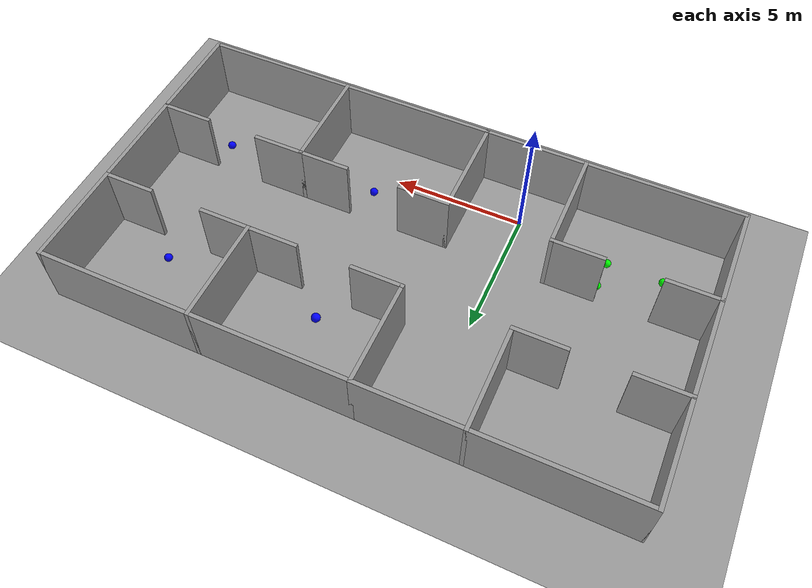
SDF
<sdf version="1.6">
 <world name="default">
  <light name="sun" type="directional">
   <pose>0 0 10 0 -0 0</pose>
   <diffuse>0.8 0.8 0.8 1</diffuse>
   <specular>0.2 0.2 0.2 1</specular>
   <attenuation>
    <range>1000</range>
    <constant>0.9</constant>
    <linear>0.01</linear>
    <quadratic>0.001</quadratic>
   </attenuation>
   <direction>0.5 0.1 -0.9</direction>
  </light>
  <scene><ambient>0.4 0.4 0.4 1</ambient><background>0.7 0.7 0.7 1</background><shadows>1</shadows></scene>
  <physics name="default_physics" default="0" type="ode">
   <max_step_size>0.01</max_step_size>
   <real_time_factor>1</real_time_factor>
   <real_time_update_rate>100</real_time_update_rate>
  </physics>
  <model name="ground_plane_0">
   <static>1</static>
   <link name="link">
    <collision name="collision">
     <geometry><plane><normal>0 0 1</normal><size>100 100</size></plane></geometry>
     <surface><friction><ode><mu>100</mu><mu2>50</mu2></ode></friction></surface>
    </collision>
    <visual name="visual">
     <cast_shadows>0</cast_shadows>
     <geometry><plane><normal>0 0 1</normal><size>100 100</size></plane></geometry>
     <material>
      <script><uri>file://media/materials/scripts/gazebo.material</uri><name>Gazebo/Grey</name></script>
     </material>
    </visual>
    <velocity_decay><linear>0</linear><angular>0</angular></velocity_decay>
   </link>
  </model>
  <gravity>0 0 -9.8</gravity>
  <magnetic_field>6e-06 2.3e-05 -4.2e-05</magnetic_field>
  <atmosphere type="adiabatic"/>
  <spherical_coordinates>
   <surface_model>EARTH_WGS84</surface_model>
   <latitude_deg>0</latitude_deg>
   <longitude_deg>0</longitude_deg>
   <elevation>0</elevation>
   <heading_deg>0</heading_deg>
  </spherical_coordinates>
  <model name="Hospital">
   <pose>3.16481 4.07122 0 0 -0 0</pose>
   <link name="Wall_1">
    <collision name="Wall_1_Collision">
     <geometry><box><size>4 0.15 2.5</size></box></geometry>
     <pose>0 0 1.25 0 -0 0</pose>
    </collision>
    <visual name="Wall_1_Visual">
     <pose>0 0 1.25 0 -0 0</pose>
     <geometry><box><size>4 0.15 2.5</size></box></geometry>
     <material>
      <script><uri>file://media/materials/scripts/gazebo.material</uri><name>Gazebo/Grey</name></script>
      <ambient>1 1 1 1</ambient>
     </material>
    </visual>
    <pose>-10.7 -3.85 0 0 0 -1.5708</pose>
   </link>
   <link name="Wall_10">
    <collision name="Wall_10_Collision">
     <geometry><box><size>2 0.15 2.5</size></box></geometry>
     <pose>0 0 1.25 0 -0 0</pose>
    </collision>
    <visual name="Wall_10_Visual">
     <pose>0 0 1.25 0 -0 0</pose>
     <geometry><box><size>2 0.15 2.5</size></box></geometry>
     <material>
      <script><uri>file://media/materials/scripts/gazebo.material</uri><name>Gazebo/Grey</name></script>
      <ambient>1 1 1 1</ambient>
     </material>
    </visual>
    <pose>-0.075 -1.925 0 0 -0 0</pose>
   </link>
   <link name="Wall_12">
    <collision name="Wall_12_Collision">
     <geometry><box><size>6 0.15 2.5</size></box></geometry>
     <pose>0 0 1.25 0 -0 0</pose>
    </collision>
    <visual name="Wall_12_Visual">
     <pose>0 0 1.25 0 -0 0</pose>
     <geometry><box><size>6 0.15 2.5</size></box></geometry>
     <material>
      <script><uri>file://media/materials/scripts/gazebo.material</uri><name>Gazebo/Grey</name></script>
      <ambient>1 1 1 1</ambient>
     </material>
    </visual>
    <pose>1.925 -5.775 0 0 -0 0</pose>
   </link>
   <link name="Wall_13">
    <collision name="Wall_13_Collision">
     <geometry><box><size>4 0.15 2.5</size></box></geometry>
     <pose>0 0 1.25 0 -0 0</pose>
    </collision>
    <visual name="Wall_13_Visual">
     <pose>0 0 1.25 0 -0 0</pose>
     <geometry><box><size>4 0.15 2.5</size></box></geometry>
     <material>
      <script><uri>file://media/materials/scripts/gazebo.material</uri><name>Gazebo/Grey</name></script>
      <ambient>1 1 1 1</ambient>
     </material>
    </visual>
    <pose>4.85 -3.85 0 0 -0 1.5708</pose>
   </link>
   <link name="Wall_14">
    <collision name="Wall_14_Collision">
     <geometry><box><size>2 0.15 2.5</size></box></geometry>
     <pose>0 0 1.25 0 -0 0</pose>
    </collision>
    <visual name="Wall_14_Visual">
     <pose>0 0 1.25 0 -0 0</pose>
     <geometry><box><size>2 0.15 2.5</size></box></geometry>
     <material>
      <script><uri>file://media/materials/scripts/gazebo.material</uri><name>Gazebo/Grey</name></script>
      <ambient>1 1 1 1</ambient>
     </material>
    </visual>
    <pose>3.925 -1.925 0 0 -0 3.14159</pose>
   </link>
   <link name="Wall_16">
    <collision name="Wall_16_Collision">
     <geometry><box><size>6 0.15 2.5</size></box></geometry>
     <pose>0 0 1.25 0 -0 0</pose>
    </collision>
    <visual name="Wall_16_Visual">
     <pose>0 0 1.25 0 -0 0</pose>
     <geometry><box><size>6 0.15 2.5</size></box></geometry>
     <material>
      <script><uri>file://media/materials/scripts/gazebo.material</uri><name>Gazebo/Grey</name></script>
      <ambient>1 1 1 1</ambient>
     </material>
    </visual>
    <pose>7.775 -5.775 0 0 -0 0</pose>
   </link>
   <link name="Wall_17">
    <collision name="Wall_17_Collision">
     <geometry><box><size>4 0.15 2.5</size></box></geometry>
     <pose>0 0 1.25 0 -0 0</pose>
    </collision>
    <visual name="Wall_17_Visual">
     <pose>0 0 1.25 0 -0 0</pose>
     <geometry><box><size>4 0.15 2.5</size></box></geometry>
     <material>
      <script><uri>file://media/materials/scripts/gazebo.material</uri><name>Gazebo/Grey</name></script>
      <ambient>1 1 1 1</ambient>
     </material>
    </visual>
    <pose>10.7 -3.85 0 0 -0 1.5708</pose>
   </link>
   <link name="Wall_18">
    <collision name="Wall_18_Collision">
     <geometry><box><size>2 0.15 2.5</size></box></geometry>
     <pose>0 0 1.25 0 -0 0</pose>
    </collision>
    <visual name="Wall_18_Visual">
     <pose>0 0 1.25 0 -0 0</pose>
     <geometry><box><size>2 0.15 2.5</size></box></geometry>
     <material>
      <script><uri>file://media/materials/scripts/gazebo.material</uri><name>Gazebo/Grey</name></script>
      <ambient>1 1 1 1</ambient>
     </material>
    </visual>
    <pose>9.775 -1.925 0 0 -0 3.14159</pose>
   </link>
   <link name="Wall_2">
    <collision name="Wall_2_Collision">
     <geometry><box><size>6 0.15 2.5</size></box></geometry>
     <pose>0 0 1.25 0 -0 0</pose>
    </collision>
    <visual name="Wall_2_Visual">
     <pose>0 0 1.25 0 -0 0</pose>
     <geometry><box><size>6 0.15 2.5</size></box></geometry>
     <material>
      <script><uri>file://media/materials/scripts/gazebo.material</uri><name>Gazebo/Grey</name></script>
      <ambient>1 1 1 1</ambient>
     </material>
    </visual>
    <pose>-7.775 -5.775 0 0 -0 0</pose>
   </link>
   <link name="Wall_20">
    <collision name="Wall_20_Collision">
     <geometry><box><size>2 0.15 2.5</size></box></geometry>
     <pose>0 0 1.25 0 -0 0</pose>
    </collision>
    <visual name="Wall_20_Visual">
     <pose>0 0 1.25 0 -0 0</pose>
     <geometry><box><size>2 0.15 2.5</size></box></geometry>
     <material>
      <script><uri>file://media/materials/scripts/gazebo.material</uri><name>Gazebo/Grey</name></script>
      <ambient>1 1 1 1</ambient>
     </material>
    </visual>
    <pose>5.775 -1.925 0 0 -0 0</pose>
   </link>
   <link name="Wall_3">
    <collision name="Wall_3_Collision">
     <geometry><box><size>4 0.15 2.5</size></box></geometry>
     <pose>0 0 1.25 0 -0 0</pose>
    </collision>
    <visual name="Wall_3_Visual">
     <pose>0 0 1.25 0 -0 0</pose>
     <geometry><box><size>4 0.15 2.5</size></box></geometry>
     <material>
      <script><uri>file://media/materials/scripts/gazebo.material</uri><name>Gazebo/Grey</name></script>
      <ambient>1 1 1 1</ambient>
     </material>
    </visual>
    <pose>-4.85 -3.85 0 0 -0 1.5708</pose>
   </link>
   <link name="Wall_31">
    <collision name="Wall_31_Collision">
     <geometry><box><size>4 0.15 2.5</size></box></geometry>
     <pose>0 0 1.25 0 -0 0</pose>
    </collision>
    <visual name="Wall_31_Visual">
     <pose>0 0 1.25 0 -0 0</pose>
     <geometry><box><size>4 0.15 2.5</size></box></geometry>
     <material>
      <script><uri>file://media/materials/scripts/gazebo.material</uri><name>Gazebo/Grey</name></script>
      <ambient>1 1 1 1</ambient>
     </material>
    </visual>
    <pose>-10.7 0 0 0 -0 1.5708</pose>
   </link>
   <link name="Wall_32">
    <collision name="Wall_32_Collision">
     <geometry><box><size>2 0.15 2.5</size></box></geometry>
     <pose>0 0 1.25 0 -0 0</pose>
    </collision>
    <visual name="Wall_32_Visual">
     <pose>0 0 1.25 0 -0 0</pose>
     <geometry><box><size>2 0.15 2.5</size></box></geometry>
     <material>
      <script><uri>file://media/materials/scripts/gazebo.material</uri><name>Gazebo/Grey</name></script>
      <ambient>1 1 1 1</ambient>
     </material>
    </visual>
    <pose>-9.775 1.925 0 0 -0 0</pose>
   </link>
   <link name="Wall_34">
    <collision name="Wall_34_Collision">
     <geometry><box><size>4 0.15 2.5</size></box></geometry>
     <pose>0 0 1.25 0 -0 0</pose>
    </collision>
    <visual name="Wall_34_Visual">
     <pose>0 0 1.25 0 -0 0</pose>
     <geometry><box><size>4 0.15 2.5</size></box></geometry>
     <material>
      <script><uri>file://media/materials/scripts/gazebo.material</uri><name>Gazebo/Grey</name></script>
      <ambient>1 1 1 1</ambient>
     </material>
    </visual>
    <pose>-10.7 3.85 0 0 -0 1.5708</pose>
   </link>
   <link name="Wall_35">
    <collision name="Wall_35_Collision">
     <geometry><box><size>6 0.15 2.5</size></box></geometry>
     <pose>0 0 1.25 0 -0 0</pose>
    </collision>
    <visual name="Wall_35_Visual">
     <pose>0 0 1.25 0 -0 0</pose>
     <geometry><box><size>6 0.15 2.5</size></box></geometry>
     <material>
      <script><uri>file://media/materials/scripts/gazebo.material</uri><name>Gazebo/Grey</name></script>
      <ambient>1 1 1 1</ambient>
     </material>
    </visual>
    <pose>-7.775 5.775 0 0 -0 0</pose>
   </link>
   <link name="Wall_36">
    <collision name="Wall_36_Collision">
     <geometry><box><size>4 0.15 2.5</size></box></geometry>
     <pose>0 0 1.25 0 -0 0</pose>
    </collision>
    <visual name="Wall_36_Visual">
     <pose>0 0 1.25 0 -0 0</pose>
     <geometry><box><size>4 0.15 2.5</size></box></geometry>
     <material>
      <script><uri>file://media/materials/scripts/gazebo.material</uri><name>Gazebo/Grey</name></script>
      <ambient>1 1 1 1</ambient>
     </material>
    </visual>
    <pose>-4.85 3.85 0 0 0 -1.5708</pose>
   </link>
   <link name="Wall_37">
    <collision name="Wall_37_Collision">
     <geometry><box><size>2 0.15 2.5</size></box></geometry>
     <pose>0 0 1.25 0 -0 0</pose>
    </collision>
    <visual name="Wall_37_Visual">
     <pose>0 0 1.25 0 -0 0</pose>
     <geometry><box><size>2 0.15 2.5</size></box></geometry>
     <material>
      <script><uri>file://media/materials/scripts/gazebo.material</uri><name>Gazebo/Grey</name></script>
      <ambient>1 1 1 1</ambient>
     </material>
    </visual>
    <pose>-5.775 1.925 0 0 -0 3.14159</pose>
   </link>
   <link name="Wall_4">
    <collision name="Wall_4_Collision">
     <geometry><box><size>2 0.15 2.5</size></box></geometry>
     <pose>0 0 1.25 0 -0 0</pose>
    </collision>
    <visual name="Wall_4_Visual">
     <pose>0 0 1.25 0 -0 0</pose>
     <geometry><box><size>2 0.15 2.5</size></box></geometry>
     <material>
      <script><uri>file://media/materials/scripts/gazebo.material</uri><name>Gazebo/Grey</name></script>
      <ambient>1 1 1 1</ambient>
     </material>
    </visual>
    <pose>-5.775 -1.925 0 0 -0 3.14159</pose>
   </link>
   <link name="Wall_43">
    <collision name="Wall_43_Collision">
     <geometry><box><size>4 0.15 2.5</size></box></geometry>
     <pose>0 0 1.25 0 -0 0</pose>
    </collision>
    <visual name="Wall_43_Visual">
     <pose>0 0 1.25 0 -0 0</pose>
     <geometry><box><size>4 0.15 2.5</size></box></geometry>
     <material>
      <script><uri>file://media/materials/scripts/gazebo.material</uri><name>Gazebo/Grey</name></script>
      <ambient>1 1 1 1</ambient>
     </material>
    </visual>
    <pose>-2.925 5.775 0 0 -0 0</pose>
   </link>
   <link name="Wall_44">
    <collision name="Wall_44_Collision">
     <geometry><box><size>4 0.15 2.5</size></box></geometry>
     <pose>0 0 1.25 0 -0 0</pose>
    </collision>
    <visual name="Wall_44_Visual">
     <pose>0 0 1.25 0 -0 0</pose>
     <geometry><box><size>4 0.15 2.5</size></box></geometry>
     <material>
      <script><uri>file://media/materials/scripts/gazebo.material</uri><name>Gazebo/Grey</name></script>
      <ambient>1 1 1 1</ambient>
     </material>
    </visual>
    <pose>-1 3.85 0 0 0 -1.5708</pose>
   </link>
   <link name="Wall_45">
    <collision name="Wall_45_Collision">
     <geometry><box><size>2 0.15 2.5</size></box></geometry>
     <pose>0 0 1.25 0 -0 0</pose>
    </collision>
    <visual name="Wall_45_Visual">
     <pose>0 0 1.25 0 -0 0</pose>
     <geometry><box><size>2 0.15 2.5</size></box></geometry>
     <material>
      <script><uri>file://media/materials/scripts/gazebo.material</uri><name>Gazebo/Grey</name></script>
      <ambient>1 1 1 1</ambient>
     </material>
    </visual>
    <pose>-0.075 1.925 0 0 -0 0</pose>
   </link>
   <link name="Wall_48">
    <collision name="Wall_48_Collision">
     <geometry><box><size>6 0.15 2.5</size></box></geometry>
     <pose>0 0 1.25 0 -0 0</pose>
    </collision>
    <visual name="Wall_48_Visual">
     <pose>0 0 1.25 0 -0 0</pose>
     <geometry><box><size>6 0.15 2.5</size></box></geometry>
     <material>
      <script><uri>file://media/materials/scripts/gazebo.material</uri><name>Gazebo/Grey</name></script>
      <ambient>1 1 1 1</ambient>
     </material>
    </visual>
    <pose>1.925 5.775 0 0 -0 0</pose>
   </link>
   <link name="Wall_49">
    <collision name="Wall_49_Collision">
     <geometry><box><size>4 0.15 2.5</size></box></geometry>
     <pose>0 0 1.25 0 -0 0</pose>
    </collision>
    <visual name="Wall_49_Visual">
     <pose>0 0 1.25 0 -0 0</pose>
     <geometry><box><size>4 0.15 2.5</size></box></geometry>
     <material>
      <script><uri>file://media/materials/scripts/gazebo.material</uri><name>Gazebo/Grey</name></script>
      <ambient>1 1 1 1</ambient>
     </material>
    </visual>
    <pose>4.85 3.85 0 0 0 -1.5708</pose>
   </link>
   <link name="Wall_50">
    <collision name="Wall_50_Collision">
     <geometry><box><size>2 0.15 2.5</size></box></geometry>
     <pose>0 0 1.25 0 -0 0</pose>
    </collision>
    <visual name="Wall_50_Visual">
     <pose>0 0 1.25 0 -0 0</pose>
     <geometry><box><size>2 0.15 2.5</size></box></geometry>
     <material>
      <script><uri>file://media/materials/scripts/gazebo.material</uri><name>Gazebo/Grey</name></script>
      <ambient>1 1 1 1</ambient>
     </material>
    </visual>
    <pose>3.925 1.925 0 0 -0 3.14159</pose>
   </link>
   <link name="Wall_52">
    <collision name="Wall_52_Collision">
     <geometry><box><size>6 0.15 2.5</size></box></geometry>
     <pose>0 0 1.25 0 -0 0</pose>
    </collision>
    <visual name="Wall_52_Visual">
     <pose>0 0 1.25 0 -0 0</pose>
     <geometry><box><size>6 0.15 2.5</size></box></geometry>
     <material>
      <script><uri>file://media/materials/scripts/gazebo.material</uri><name>Gazebo/Grey</name></script>
      <ambient>1 1 1 1</ambient>
     </material>
    </visual>
    <pose>7.775 5.775 0 0 -0 0</pose>
   </link>
   <link name="Wall_53">
    <collision name="Wall_53_Collision">
     <geometry><box><size>4 0.15 2.5</size></box></geometry>
     <pose>0 0 1.25 0 -0 0</pose>
    </collision>
    <visual name="Wall_53_Visual">
     <pose>0 0 1.25 0 -0 0</pose>
     <geometry><box><size>4 0.15 2.5</size></box></geometry>
     <material>
      <script><uri>file://media/materials/scripts/gazebo.material</uri><name>Gazebo/Grey</name></script>
      <ambient>1 1 1 1</ambient>
     </material>
    </visual>
    <pose>10.7 3.85 0 0 0 -1.5708</pose>
   </link>
   <link name="Wall_54">
    <collision name="Wall_54_Collision">
     <geometry><box><size>2 0.15 2.5</size></box></geometry>
     <pose>0 0 1.25 0 -0 0</pose>
    </collision>
    <visual name="Wall_54_Visual">
     <pose>0 0 1.25 0 -0 0</pose>
     <geometry><box><size>2 0.15 2.5</size></box></geometry>
     <material>
      <script><uri>file://media/materials/scripts/gazebo.material</uri><name>Gazebo/Grey</name></script>
      <ambient>1 1 1 1</ambient>
     </material>
    </visual>
    <pose>9.775 1.925 0 0 -0 3.14159</pose>
   </link>
   <link name="Wall_56">
    <collision name="Wall_56_Collision">
     <geometry><box><size>2 0.15 2.5</size></box></geometry>
     <pose>0 0 1.25 0 -0 0</pose>
    </collision>
    <visual name="Wall_56_Visual">
     <pose>0 0 1.25 0 -0 0</pose>
     <geometry><box><size>2 0.15 2.5</size></box></geometry>
     <material>
      <script><uri>file://media/materials/scripts/gazebo.material</uri><name>Gazebo/Grey</name></script>
      <ambient>1 1 1 1</ambient>
     </material>
    </visual>
    <pose>5.775 1.925 0 0 -0 0</pose>
   </link>
   <link name="Wall_58">
    <collision name="Wall_58_Collision">
     <geometry><box><size>4 0.15 2.5</size></box></geometry>
     <pose>0 0 1.25 0 -0 0</pose>
    </collision>
    <visual name="Wall_58_Visual">
     <pose>0 0 1.25 0 -0 0</pose>
     <geometry><box><size>4 0.15 2.5</size></box></geometry>
     <material>
      <script><uri>file://media/materials/scripts/gazebo.material</uri><name>Gazebo/Grey</name></script>
      <ambient>1 1 1 1</ambient>
     </material>
    </visual>
    <pose>10.7 0 0 0 0 -1.5708</pose>
   </link>
   <link name="Wall_6">
    <collision name="Wall_6_Collision">
     <geometry><box><size>2 0.15 2.5</size></box></geometry>
     <pose>0 0 1.25 0 -0 0</pose>
    </collision>
    <visual name="Wall_6_Visual">
     <pose>0 0 1.25 0 -0 0</pose>
     <geometry><box><size>2 0.15 2.5</size></box></geometry>
     <material>
      <script><uri>file://media/materials/scripts/gazebo.material</uri><name>Gazebo/Grey</name></script>
      <ambient>1 1 1 1</ambient>
     </material>
    </visual>
    <pose>-9.775 -1.925 0 0 -0 0</pose>
   </link>
   <link name="Wall_8">
    <collision name="Wall_8_Collision">
     <geometry><box><size>4 0.15 2.5</size></box></geometry>
     <pose>0 0 1.25 0 -0 0</pose>
    </collision>
    <visual name="Wall_8_Visual">
     <pose>0 0 1.25 0 -0 0</pose>
     <geometry><box><size>4 0.15 2.5</size></box></geometry>
     <material>
      <script><uri>file://media/materials/scripts/gazebo.material</uri><name>Gazebo/Grey</name></script>
      <ambient>1 1 1 1</ambient>
     </material>
    </visual>
    <pose>-2.925 -5.775 0 0 -0 0</pose>
   </link>
   <link name="Wall_9">
    <collision name="Wall_9_Collision">
     <geometry><box><size>4 0.15 2.5</size></box></geometry>
     <pose>0 0 1.25 0 -0 0</pose>
    </collision>
    <visual name="Wall_9_Visual">
     <pose>0 0 1.25 0 -0 0</pose>
     <geometry><box><size>4 0.15 2.5</size></box></geometry>
     <material>
      <script><uri>file://media/materials/scripts/gazebo.material</uri><name>Gazebo/Grey</name></script>
      <ambient>1 1 1 1</ambient>
     </material>
    </visual>
    <pose>-1 -3.85 0 0 -0 1.5708</pose>
   </link>
   <static>1</static>
  </model>
  <model name="garbage_3">
   <pose>5.00727 7.04359 0.172054 0 -0 0</pose>
   <link name="link">
    <inertial>
     <mass>1</mass>
     <inertia><ixx>0.1</ixx><ixy>0</ixy><ixz>0</ixz><iyy>0.1</iyy><iyz>0</iyz><izz>0.1</izz></inertia>
    </inertial>
    <collision name="collision"><geometry><sphere><radius>0.172054</radius></sphere></geometry></collision>
    <visual name="visual">
     <geometry><sphere><radius>0.172054</radius></sphere></geometry>
     <material>
      <script><name>Gazebo/Grey</name><uri>file://media/materials/scripts/gazebo.material</uri></script>
      <ambient>0 0 1 1</ambient>
      <diffuse>0 0 1 1</diffuse>
      <specular>0 0 1 1</specular>
      <emissive>0 0 1 1</emissive>
     </material>
    </visual>
   </link>
  </model>
  <model name="medical_2">
   <pose>-5.67166 0.493514 0.15385 0 -0 0</pose>
   <link name="link">
    <inertial>
     <mass>1</mass>
     <inertia><ixx>0.1</ixx><ixy>0</ixy><ixz>0</ixz><iyy>0.1</iyy><iyz>0</iyz><izz>0.1</izz></inertia>
    </inertial>
    <collision name="collision"><geometry><sphere><radius>0.15385</radius></sphere></geometry></collision>
    <visual name="visual">
     <geometry><sphere><radius>0.15385</radius></sphere></geometry>
     <material>
      <script><name>Gazebo/Grey</name><uri>file://media/materials/scripts/gazebo.material</uri></script>
      <ambient>0 1 0 1</ambient>
      <diffuse>0 1 0 1</diffuse>
      <specular>0 1 0 1</specular>
      <emissive>0 1 0 1</emissive>
     </material>
    </visual>
   </link>
  </model>
  <model name="garbage_1">
   <pose>5.65061 0.975371 0.15385 0 -0 0</pose>
   <link name="link">
    <inertial>
     <mass>1</mass>
     <inertia><ixx>0.1</ixx><ixy>0</ixy><ixz>0</ixz><iyy>0.1</iyy><iyz>0</iyz><izz>0.1</izz></inertia>
    </inertial>
    <collision name="collision"><geometry><sphere><radius>0.15385</radius></sphere></geometry></collision>
    <visual name="visual">
     <geometry><sphere><radius>0.15385</radius></sphere></geometry>
     <material>
      <script><name>Gazebo/Grey</name><uri>file://media/materials/scripts/gazebo.material</uri></script>
      <ambient>0 0 1 1</ambient>
      <diffuse>0 0 1 1</diffuse>
      <specular>0 0 1 1</specular>
      <emissive>0 0 1 1</emissive>
     </material>
    </visual>
   </link>
  </model>
  <model name="garbage_4">
   <pose>11.1575 6.98021 0.15385 0 -0 0</pose>
   <link name="link">
    <inertial>
     <mass>1</mass>
     <inertia><ixx>0.1</ixx><ixy>0</ixy><ixz>0</ixz><iyy>0.1</iyy><iyz>0</iyz><izz>0.1</izz></inertia>
    </inertial>
    <collision name="collision"><geometry><sphere><radius>0.15385</radius></sphere></geometry></collision>
    <visual name="visual">
     <geometry><sphere><radius>0.15385</radius></sphere></geometry>
     <material>
      <script><name>Gazebo/Grey</name><uri>file://media/materials/scripts/gazebo.material</uri></script>
      <ambient>0 0 1 1</ambient>
      <diffuse>0 0 1 1</diffuse>
      <specular>0 0 1 1</specular>
      <emissive>0 0 1 1</emissive>
     </material>
    </visual>
   </link>
  </model>
  <model name="garbage_2">
   <pose>11.9355 1.14648 0.15385 0 -0 0</pose>
   <link name="link">
    <inertial>
     <mass>1</mass>
     <inertia><ixx>0.1</ixx><ixy>0</ixy><ixz>0</ixz><iyy>0.1</iyy><iyz>0</iyz><izz>0.1</izz></inertia>
    </inertial>
    <collision name="collision"><geometry><sphere><radius>0.15385</radius></sphere></geometry></collision>
    <visual name="visual">
     <geometry><sphere><radius>0.15385</radius></sphere></geometry>
     <material>
      <script><name>Gazebo/Grey</name><uri>file://media/materials/scripts/gazebo.material</uri></script>
      <ambient>0 0 1 1</ambient>
      <diffuse>0 0 1 1</diffuse>
      <specular>0 0 1 1</specular>
      <emissive>0 0 1 1</emissive>
     </material>
    </visual>
   </link>
  </model>
  <model name="medical_1">
   <pose>-5.8449 1.54601 0.15385 0 -0 0</pose>
   <link name="link">
    <inertial>
     <mass>1</mass>
     <inertia><ixx>0.1</ixx><ixy>0</ixy><ixz>0</ixz><iyy>0.1</iyy><iyz>0</iyz><izz>0.1</izz></inertia>
    </inertial>
    <collision name="collision"><geometry><sphere><radius>0.15385</radius></sphere></geometry></collision>
    <visual name="visual">
     <geometry><sphere><radius>0.15385</radius></sphere></geometry>
     <material>
      <script><name>Gazebo/Grey</name><uri>file://media/materials/scripts/gazebo.material</uri></script>
      <ambient>0 1 0 1</ambient>
      <diffuse>0 1 0 1</diffuse>
      <specular>0 1 0 1</specular>
      <emissive>0 1 0 1</emissive>
     </material>
    </visual>
   </link>
  </model>
  <model name="medical_3">
   <pose>-3.57634 0.515041 0.15385 0 -0 0</pose>
   <link name="link">
    <inertial>
     <mass>1</mass>
     <inertia><ixx>0.1</ixx><ixy>0</ixy><ixz>0</ixz><iyy>0.1</iyy><iyz>0</iyz><izz>0.1</izz></inertia>
    </inertial>
    <collision name="collision"><geometry><sphere><radius>0.15385</radius></sphere></geometry></collision>
    <visual name="visual">
     <geometry><sphere><radius>0.15385</radius></sphere></geometry>
     <material>
      <script><name>Gazebo/Grey</name><uri>file://media/materials/scripts/gazebo.material</uri></script>
      <ambient>0 1 0 1</ambient>
      <diffuse>0 1 0 1</diffuse>
      <specular>0 1 0 1</specular>
      <emissive>0 1 0 1</emissive>
     </material>
    </visual>
   </link>
  </model>
  <model name="medical_4">
   <pose>-3.52665 1.61488 0.15385 0 -0 0</pose>
   <link name="link">
    <inertial>
     <mass>1</mass>
     <inertia><ixx>0.1</ixx><ixy>0</ixy><ixz>0</ixz><iyy>0.1</iyy><iyz>0</iyz><izz>0.1</izz></inertia>
    </inertial>
    <collision name="collision"><geometry><sphere><radius>0.15385</radius></sphere></geometry></collision>
    <visual name="visual">
     <geometry><sphere><radius>0.15385</radius></sphere></geometry>
     <material>
      <script><name>Gazebo/Grey</name><uri>file://media/materials/scripts/gazebo.material</uri></script>
      <ambient>0 1 0 1</ambient>
      <diffuse>0 1 0 1</diffuse>
      <specular>0 1 0 1</specular>
      <emissive>0 1 0 1</emissive>
     </material>
    </visual>
   </link>
  </model>
 </world>
</sdf>
